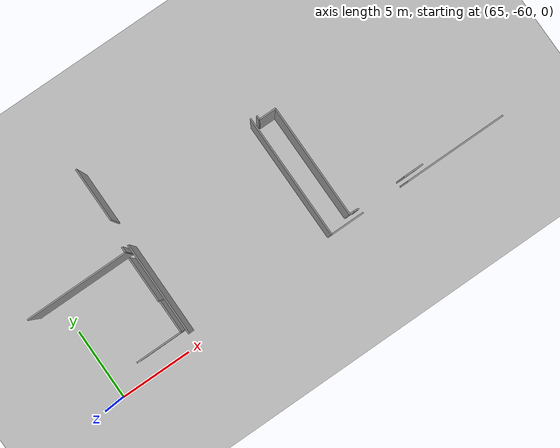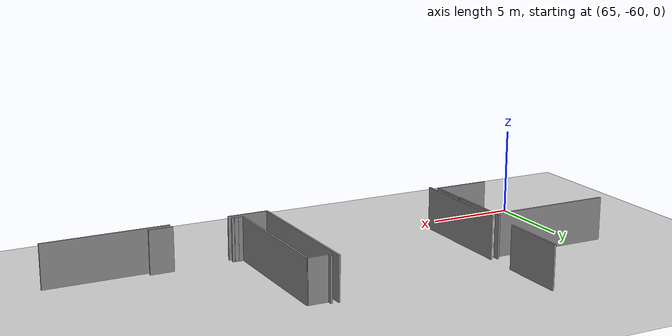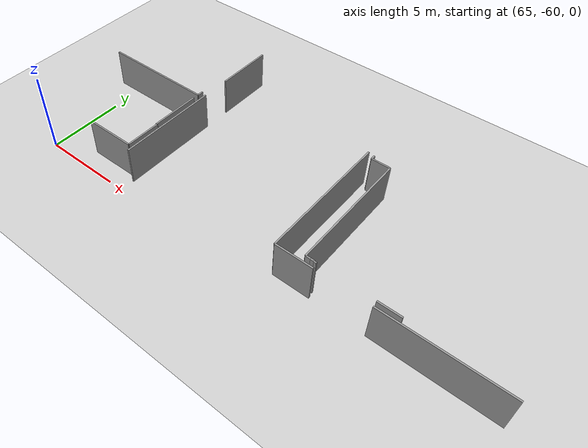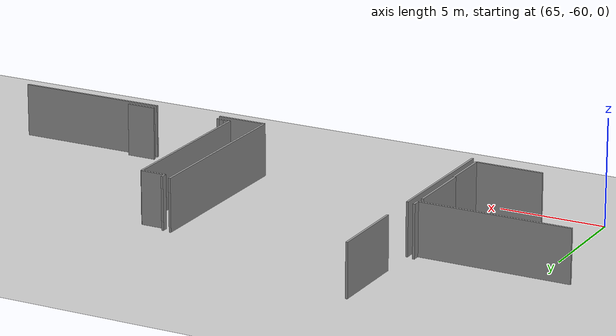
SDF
<sdf version="1.6">
 <world name="default">
  <model name="ground_plane">
   <static>1</static>
   <link name="link">
    <collision name="collision">
     <geometry><plane><normal>0 0 1</normal><size>100 100</size></plane></geometry>
     <surface><friction><ode><mu>100</mu><mu2>50</mu2></ode></friction></surface>
    </collision>
    <visual name="visual">
     <cast_shadows>0</cast_shadows>
     <geometry><plane><normal>0 0 1</normal><size>100 100</size></plane></geometry>
     <material>
      <script><uri>file://media/materials/scripts/gazebo.material</uri><name>Gazebo/Grey</name></script>
     </material>
    </visual>
   </link>
  </model>
  <model name="0510035517_A_40_1_105">
   <static>1</static>
   <link name="Wall_658">
    <collision name="Wall_658_Collision">
     <geometry><box><size>6.51582445372 0.1 2.5</size></box></geometry>
     <pose>3.25791222686 0 1.25 0 0 0</pose>
    </collision>
    <visual name="Wall_658_Visual">
     <pose>3.25791222686 0 1.25 0 0 0</pose>
     <geometry><box><size>6.51582445372 0.1 2.5</size></box></geometry>
     <material>
      <script><uri>file://media/materials/scripts/gazebo.material</uri><name>Gazebo/Grey</name></script>
      <ambient>1 1 1 1</ambient>
     </material>
    </visual>
    <pose>165.609246234 -122.86739991 0 0 0 1.57079632679</pose>
   </link>
   <link name="Wall_659">
    <collision name="Wall_659_Collision">
     <geometry><box><size>3.76559094693 0.1 2.5</size></box></geometry>
     <pose>1.88279547346 0 1.25 0 0 0</pose>
    </collision>
    <visual name="Wall_659_Visual">
     <pose>1.88279547346 0 1.25 0 0 0</pose>
     <geometry><box><size>3.76559094693 0.1 2.5</size></box></geometry>
     <material>
      <script><uri>file://media/materials/scripts/gazebo.material</uri><name>Gazebo/Grey</name></script>
      <ambient>1 1 1 1</ambient>
     </material>
    </visual>
    <pose>165.609246234 -114.516053195 0 0 0 1.57079632679</pose>
   </link>
   <link name="Wall_662">
    <collision name="Wall_662_Collision">
     <geometry><box><size>8.59914984465 0.1 2.5</size></box></geometry>
     <pose>4.29957492232 0 1.25 0 0 0</pose>
    </collision>
    <visual name="Wall_662_Visual">
     <pose>4.29957492232 0 1.25 0 0 0</pose>
     <geometry><box><size>8.59914984465 0.1 2.5</size></box></geometry>
     <material>
      <script><uri>file://media/materials/scripts/gazebo.material</uri><name>Gazebo/Grey</name></script>
      <ambient>1 1 1 1</ambient>
     </material>
    </visual>
    <pose>176.07060483 -114.258592097 0 0 0 -1.57079632679</pose>
   </link>
   <link name="Wall_663">
    <collision name="Wall_663_Collision">
     <geometry><box><size>2.33239930615 0.1 2.5</size></box></geometry>
     <pose>1.16619965308 0 1.25 0 0 0</pose>
    </collision>
    <visual name="Wall_663_Visual">
     <pose>1.16619965308 0 1.25 0 0 0</pose>
     <geometry><box><size>2.33239930615 0.1 2.5</size></box></geometry>
     <material>
      <script><uri>file://media/materials/scripts/gazebo.material</uri><name>Gazebo/Grey</name></script>
      <ambient>1 1 1 1</ambient>
     </material>
    </visual>
    <pose>176.07060483 -122.857741942 0 0 0 0.0</pose>
   </link>
   <link name="Wall_664">
    <collision name="Wall_664_Collision">
     <geometry><box><size>7.06963267951 0.1 2.5</size></box></geometry>
     <pose>3.53481633976 0 1.25 0 0 0</pose>
    </collision>
    <visual name="Wall_664_Visual">
     <pose>3.53481633976 0 1.25 0 0 0</pose>
     <geometry><box><size>7.06963267951 0.1 2.5</size></box></geometry>
     <material>
      <script><uri>file://media/materials/scripts/gazebo.material</uri><name>Gazebo/Grey</name></script>
      <ambient>1 1 1 1</ambient>
     </material>
    </visual>
    <pose>181.71390811 -122.857741942 0 0 0 0.0</pose>
   </link>
   <link name="Wall_678">
    <collision name="Wall_678_Collision">
     <geometry><box><size>3.20746205117 0.1 2.5</size></box></geometry>
     <pose>1.60373102559 0 1.25 0 0 0</pose>
    </collision>
    <visual name="Wall_678_Visual">
     <pose>1.60373102559 0 1.25 0 0 0</pose>
     <geometry><box><size>3.20746205117 0.1 2.5</size></box></geometry>
     <material>
      <script><uri>file://media/materials/scripts/gazebo.material</uri><name>Gazebo/Grey</name></script>
      <ambient>1 1 1 1</ambient>
     </material>
    </visual>
    <pose>165.21326954 -117.0195002 0 0 0 -1.57079632679</pose>
   </link>
   <link name="Wall_679">
    <collision name="Wall_679_Collision">
     <geometry><box><size>0.0548979241723 0.1 2.5</size></box></geometry>
     <pose>0.0274489620861 0 1.25 0 0 0</pose>
    </collision>
    <visual name="Wall_679_Visual">
     <pose>0.0274489620861 0 1.25 0 0 0</pose>
     <geometry><box><size>0.0548979241723 0.1 2.5</size></box></geometry>
     <material>
      <script><uri>file://media/materials/scripts/gazebo.material</uri><name>Gazebo/Grey</name></script>
      <ambient>1 1 1 1</ambient>
     </material>
    </visual>
    <pose>165.21326954 -120.226962251 0 0 0 0.0</pose>
   </link>
   <link name="Wall_680">
    <collision name="Wall_680_Collision">
     <geometry><box><size>2.27419734025 0.1 2.5</size></box></geometry>
     <pose>1.13709867012 0 1.25 0 0 0</pose>
    </collision>
    <visual name="Wall_680_Visual">
     <pose>1.13709867012 0 1.25 0 0 0</pose>
     <geometry><box><size>2.27419734025 0.1 2.5</size></box></geometry>
     <material>
      <script><uri>file://media/materials/scripts/gazebo.material</uri><name>Gazebo/Grey</name></script>
      <ambient>1 1 1 1</ambient>
     </material>
    </visual>
    <pose>165.268167464 -120.226962251 0 0 0 -1.57079632679</pose>
   </link>
   <link name="Wall_681">
    <collision name="Wall_681_Collision">
     <geometry><box><size>3.2084786794 0.1 2.5</size></box></geometry>
     <pose>1.6042393397 0 1.25 0 0 0</pose>
    </collision>
    <visual name="Wall_681_Visual">
     <pose>1.6042393397 0 1.25 0 0 0</pose>
     <geometry><box><size>3.2084786794 0.1 2.5</size></box></geometry>
     <material>
      <script><uri>file://media/materials/scripts/gazebo.material</uri><name>Gazebo/Grey</name></script>
      <ambient>1 1 1 1</ambient>
     </material>
    </visual>
    <pose>165.268167464 -122.501159592 0 0 0 3.14159265359</pose>
   </link>
   <link name="Wall_690">
    <collision name="Wall_690_Collision">
     <geometry><box><size>0.387843667995 0.1 2.5</size></box></geometry>
     <pose>0.193921833997 0 1.25 0 0 0</pose>
    </collision>
    <visual name="Wall_690_Visual">
     <pose>0.193921833997 0 1.25 0 0 0</pose>
     <geometry><box><size>0.387843667995 0.1 2.5</size></box></geometry>
     <material>
      <script><uri>file://media/materials/scripts/gazebo.material</uri><name>Gazebo/Grey</name></script>
      <ambient>1 1 1 1</ambient>
     </material>
    </visual>
    <pose>165.23309379 -116.243812864 0 0 0 -1.57079632679</pose>
   </link>
   <link name="Wall_691">
    <collision name="Wall_691_Collision">
     <geometry><box><size>7.13774876612 0.1 2.5</size></box></geometry>
     <pose>3.56887438306 0 1.25 0 0 0</pose>
    </collision>
    <visual name="Wall_691_Visual">
     <pose>3.56887438306 0 1.25 0 0 0</pose>
     <geometry><box><size>7.13774876612 0.1 2.5</size></box></geometry>
     <material>
      <script><uri>file://media/materials/scripts/gazebo.material</uri><name>Gazebo/Grey</name></script>
      <ambient>1 1 1 1</ambient>
     </material>
    </visual>
    <pose>165.23309379 -116.631656532 0 0 0 3.140844897</pose>
   </link>
   <link name="Wall_692">
    <collision name="Wall_692_Collision">
     <geometry><box><size>0.303463525285 0.1 2.5</size></box></geometry>
     <pose>0.151731762643 0 1.25 0 0 0</pose>
    </collision>
    <visual name="Wall_692_Visual">
     <pose>0.151731762643 0 1.25 0 0 0</pose>
     <geometry><box><size>0.303463525285 0.1 2.5</size></box></geometry>
     <material>
      <script><uri>file://media/materials/scripts/gazebo.material</uri><name>Gazebo/Grey</name></script>
      <ambient>1 1 1 1</ambient>
     </material>
    </visual>
    <pose>177.969666355 -122.4762522 0 0 0 3.14159265359</pose>
   </link>
   <link name="Wall_693">
    <collision name="Wall_693_Collision">
     <geometry><box><size>7.86768583646 0.1 2.5</size></box></geometry>
     <pose>3.93384291823 0 1.25 0 0 0</pose>
    </collision>
    <visual name="Wall_693_Visual">
     <pose>3.93384291823 0 1.25 0 0 0</pose>
     <geometry><box><size>7.86768583646 0.1 2.5</size></box></geometry>
     <material>
      <script><uri>file://media/materials/scripts/gazebo.material</uri><name>Gazebo/Grey</name></script>
      <ambient>1 1 1 1</ambient>
     </material>
    </visual>
    <pose>177.66620283 -122.4762522 0 0 0 1.57079632679</pose>
   </link>
   <link name="Wall_694">
    <collision name="Wall_694_Collision">
     <geometry><box><size>1.18488019672 0.1 2.5</size></box></geometry>
     <pose>0.592440098359 0 1.25 0 0 0</pose>
    </collision>
    <visual name="Wall_694_Visual">
     <pose>0.592440098359 0 1.25 0 0 0</pose>
     <geometry><box><size>1.18488019672 0.1 2.5</size></box></geometry>
     <material>
      <script><uri>file://media/materials/scripts/gazebo.material</uri><name>Gazebo/Grey</name></script>
      <ambient>1 1 1 1</ambient>
     </material>
    </visual>
    <pose>177.66620283 -114.608566364 0 0 0 3.14159265359</pose>
   </link>
   <link name="Wall_695">
    <collision name="Wall_695_Collision">
     <geometry><box><size>0.288976573073 0.1 2.5</size></box></geometry>
     <pose>0.144488286537 0 1.25 0 0 0</pose>
    </collision>
    <visual name="Wall_695_Visual">
     <pose>0.144488286537 0 1.25 0 0 0</pose>
     <geometry><box><size>0.288976573073 0.1 2.5</size></box></geometry>
     <material>
      <script><uri>file://media/materials/scripts/gazebo.material</uri><name>Gazebo/Grey</name></script>
      <ambient>1 1 1 1</ambient>
     </material>
    </visual>
    <pose>176.481322633 -114.608566364 0 0 0 1.57079632679</pose>
   </link>
   <link name="Wall_704">
    <collision name="Wall_704_Collision">
     <geometry><box><size>1.37651461721 0.1 2.5</size></box></geometry>
     <pose>0.688257308604 0 1.25 0 0 0</pose>
    </collision>
    <visual name="Wall_704_Visual">
     <pose>0.688257308604 0 1.25 0 0 0</pose>
     <geometry><box><size>1.37651461721 0.1 2.5</size></box></geometry>
     <material>
      <script><uri>file://media/materials/scripts/gazebo.material</uri><name>Gazebo/Grey</name></script>
      <ambient>1 1 1 1</ambient>
     </material>
    </visual>
    <pose>183.059669723 -122.507767675 0 0 0 3.14159265359</pose>
   </link>
   <link name="Wall_705">
    <collision name="Wall_705_Collision">
     <geometry><box><size>0.146902778572 0.1 2.5</size></box></geometry>
     <pose>0.073451389286 0 1.25 0 0 0</pose>
    </collision>
    <visual name="Wall_705_Visual">
     <pose>0.073451389286 0 1.25 0 0 0</pose>
     <geometry><box><size>0.146902778572 0.1 2.5</size></box></geometry>
     <material>
      <script><uri>file://media/materials/scripts/gazebo.material</uri><name>Gazebo/Grey</name></script>
      <ambient>1 1 1 1</ambient>
     </material>
    </visual>
    <pose>178.33793993 -122.507767675 0 0 0 3.14159265359</pose>
   </link>
   <link name="Wall_706">
    <collision name="Wall_706_Collision">
     <geometry><box><size>0.025161548579 0.1 2.5</size></box></geometry>
     <pose>0.0125807742895 0 1.25 0 0 0</pose>
    </collision>
    <visual name="Wall_706_Visual">
     <pose>0.0125807742895 0 1.25 0 0 0</pose>
     <geometry><box><size>0.025161548579 0.1 2.5</size></box></geometry>
     <material>
      <script><uri>file://media/materials/scripts/gazebo.material</uri><name>Gazebo/Grey</name></script>
      <ambient>1 1 1 1</ambient>
     </material>
    </visual>
    <pose>178.191037151 -122.507767675 0 0 0 1.57079632679</pose>
   </link>
   <link name="Wall_707">
    <collision name="Wall_707_Collision">
     <geometry><box><size>0.221461964543 0.1 2.5</size></box></geometry>
     <pose>0.110730982272 0 1.25 0 0 0</pose>
    </collision>
    <visual name="Wall_707_Visual">
     <pose>0.110730982272 0 1.25 0 0 0</pose>
     <geometry><box><size>0.221461964543 0.1 2.5</size></box></geometry>
     <material>
      <script><uri>file://media/materials/scripts/gazebo.material</uri><name>Gazebo/Grey</name></script>
      <ambient>1 1 1 1</ambient>
     </material>
    </visual>
    <pose>178.191037151 -122.482606126 0 0 0 3.1128978912</pose>
   </link>
   <pose>-94.6 63.7835382475 0 0 0 0</pose>
  </model>
 </world>
</sdf>
